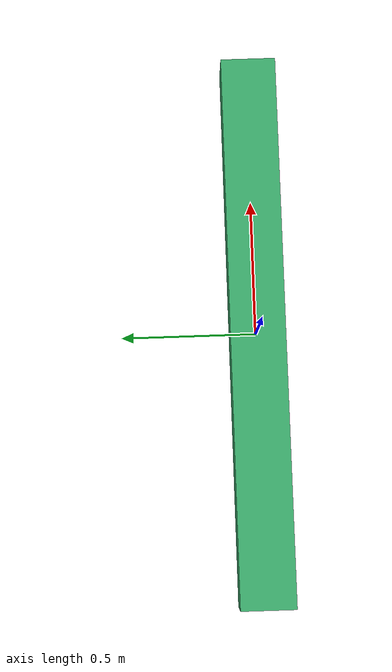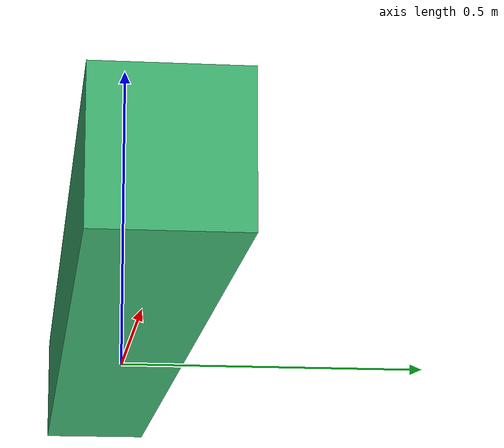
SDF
<?xml version='1.0'?>
<sdf version='1.4'>
  <model name="large_object">
    <link name="link" >
      <pose>0 0 0.1 0 0 0</pose>
      <inertial>
        <mass>2.0</mass>
        <inertia>
          <!-- http://answers.gazebosim.org/question/4372/the-inertia-matrix-explained/ -->
          <ixx>0.01328</ixx>    <!-- for a box: ixx = 0.083 * mass * (y*y + z*z) -->
          <ixy>0.0</ixy>        <!-- for a box: ixy = 0 -->
          <ixz>0.0</ixz>        <!-- for a box: ixz = 0 -->
          <iyy>0.67064</iyy>    <!-- for a box: iyy = 0.083 * mass * (x*x + z*z) -->
          <iyz>0.0</iyz>        <!-- for a box: iyz = 0 -->
          <izz>0.67064</izz>    <!-- for a box: izz = 0.083 * mass * (x*x + y*y) -->
        </inertia>
      </inertial>
      <collision name="collision">
        <geometry>
          <box>
            <size>2.0 0.2 0.2</size>
          </box>
        </geometry>
      </collision>
      <visual name="visual">
        <geometry>
          <box>
            <size>2.0 0.2 0.2</size>
          </box>
        </geometry>
        <material>
          <ambient>0.24 0.70 0.44 1</ambient> <!-- MediamSeaGreen -->
          <diffuse>0.24 0.70 0.44 1</diffuse>
          <specular>0.1 0.1 0.1 1</specular>
          <emissive>0 0 0 0</emissive>
        </material>
      </visual>
    </link>
  </model>
</sdf>
